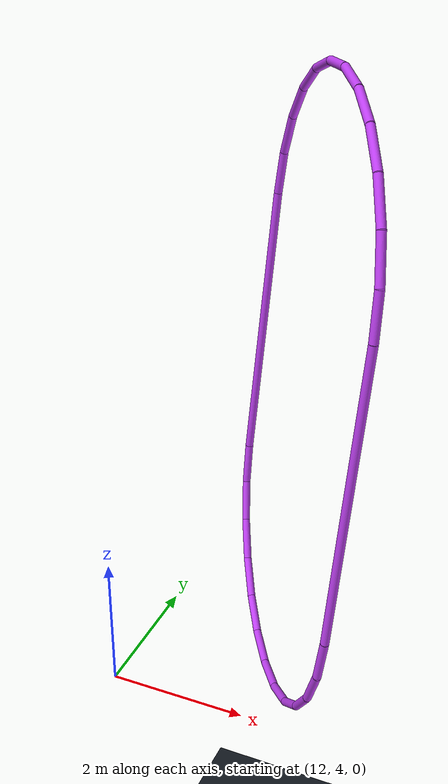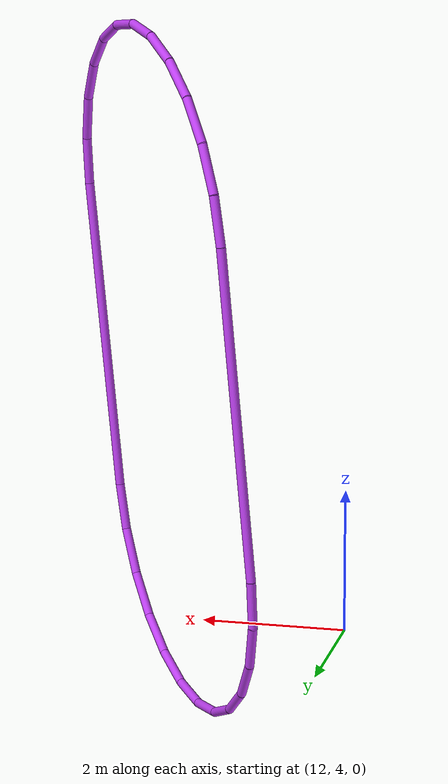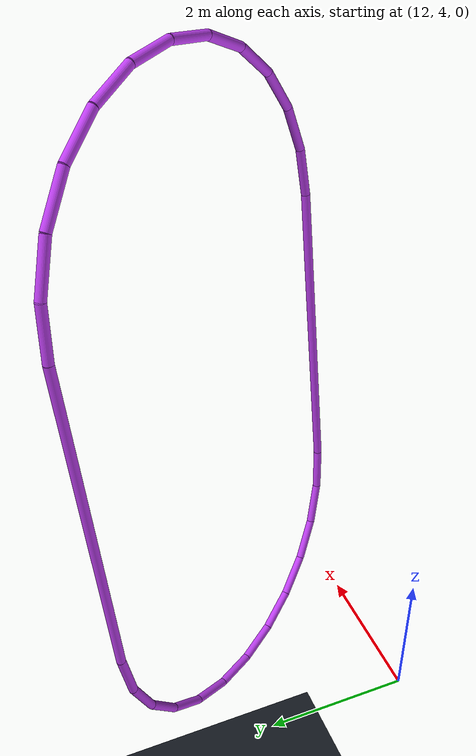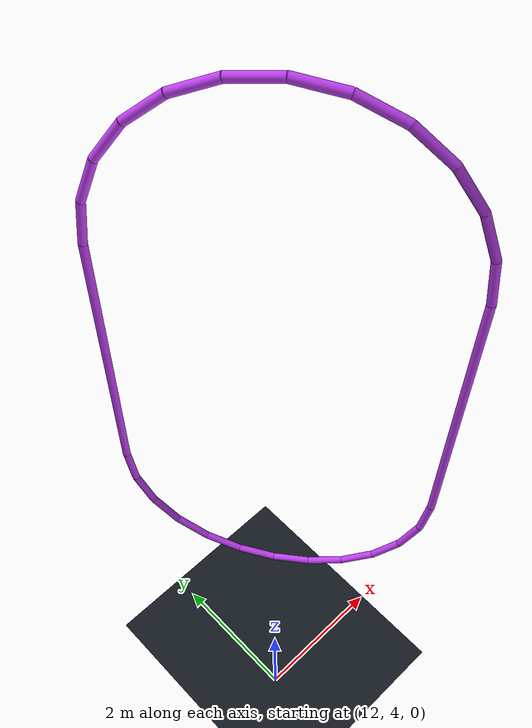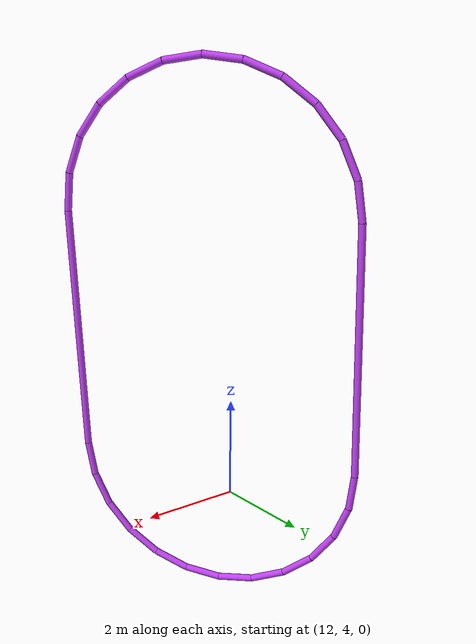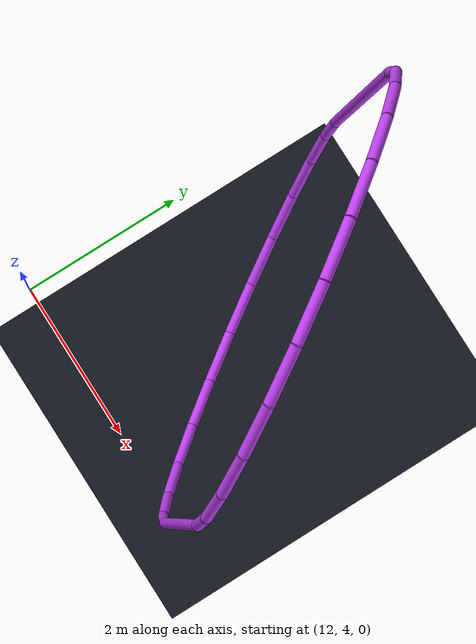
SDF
<sdf version="1.9">
 <world name="wide_scrambled_fast_closed_loop">
  <model name="ground">
   <static>true</static>
   <pose>0 0 -6 0 0 0</pose>
   <link name="link">
    <collision name="c"><geometry><plane><normal>0 0 1</normal><size>80 80</size></plane></geometry></collision>
    <visual name="v">
     <geometry><plane><normal>0 0 1</normal><size>80 80</size></plane></geometry>
     <material><diffuse>0.08 0.10 0.13 1</diffuse></material>
    </visual>
   </link>
  </model>
  <model name="gate_4_arc_capsule">
   <static>true</static>
   <pose>14.000000 6.000000 4.000000 0.000000 1.665382 0.605545</pose>
   <link name="edge_0">
    <pose>0.000000 -2.450000 0 0 1.570796 0.000000</pose>
    <collision name="collision">
     <geometry><cylinder><radius>0.06</radius><length>4.300000</length></cylinder></geometry>
    </collision>
    <visual name="visual">
     <geometry><cylinder><radius>0.06</radius><length>4.300000</length></cylinder></geometry>
     <material><diffuse>0.75 0.25 0.95 1</diffuse><emissive>0.75 0.25 0.95 1</emissive></material>
    </visual>
   </link>
   <link name="edge_1">
    <pose>2.467053 -2.408259 0 0 1.570796 0.130900</pose>
    <collision name="collision">
     <geometry><cylinder><radius>0.06</radius><length>0.639578</length></cylinder></geometry>
    </collision>
    <visual name="visual">
     <geometry><cylinder><radius>0.06</radius><length>0.639578</length></cylinder></geometry>
     <material><diffuse>0.75 0.25 0.95 1</diffuse><emissive>0.75 0.25 0.95 1</emissive></material>
    </visual>
   </link>
   <link name="edge_2">
    <pose>3.079553 -2.244140 0 0 1.570796 0.392699</pose>
    <collision name="collision">
     <geometry><cylinder><radius>0.06</radius><length>0.639578</length></cylinder></geometry>
    </collision>
    <visual name="visual">
     <geometry><cylinder><radius>0.06</radius><length>0.639578</length></cylinder></geometry>
     <material><diffuse>0.75 0.25 0.95 1</diffuse><emissive>0.75 0.25 0.95 1</emissive></material>
    </visual>
   </link>
   <link name="edge_3">
    <pose>3.628706 -1.927087 0 0 1.570796 0.654498</pose>
    <collision name="collision">
     <geometry><cylinder><radius>0.06</radius><length>0.639578</length></cylinder></geometry>
    </collision>
    <visual name="visual">
     <geometry><cylinder><radius>0.06</radius><length>0.639578</length></cylinder></geometry>
     <material><diffuse>0.75 0.25 0.95 1</diffuse><emissive>0.75 0.25 0.95 1</emissive></material>
    </visual>
   </link>
   <link name="edge_4">
    <pose>4.077087 -1.478706 0 0 1.570796 0.916298</pose>
    <collision name="collision">
     <geometry><cylinder><radius>0.06</radius><length>0.639578</length></cylinder></geometry>
    </collision>
    <visual name="visual">
     <geometry><cylinder><radius>0.06</radius><length>0.639578</length></cylinder></geometry>
     <material><diffuse>0.75 0.25 0.95 1</diffuse><emissive>0.75 0.25 0.95 1</emissive></material>
    </visual>
   </link>
   <link name="edge_5">
    <pose>4.394140 -0.929553 0 0 1.570796 1.178097</pose>
    <collision name="collision">
     <geometry><cylinder><radius>0.06</radius><length>0.639578</length></cylinder></geometry>
    </collision>
    <visual name="visual">
     <geometry><cylinder><radius>0.06</radius><length>0.639578</length></cylinder></geometry>
     <material><diffuse>0.75 0.25 0.95 1</diffuse><emissive>0.75 0.25 0.95 1</emissive></material>
    </visual>
   </link>
   <link name="edge_6">
    <pose>4.558259 -0.317053 0 0 1.570796 1.439897</pose>
    <collision name="collision">
     <geometry><cylinder><radius>0.06</radius><length>0.639578</length></cylinder></geometry>
    </collision>
    <visual name="visual">
     <geometry><cylinder><radius>0.06</radius><length>0.639578</length></cylinder></geometry>
     <material><diffuse>0.75 0.25 0.95 1</diffuse><emissive>0.75 0.25 0.95 1</emissive></material>
    </visual>
   </link>
   <link name="edge_7">
    <pose>4.558259 0.317053 0 0 1.570796 1.701696</pose>
    <collision name="collision">
     <geometry><cylinder><radius>0.06</radius><length>0.639578</length></cylinder></geometry>
    </collision>
    <visual name="visual">
     <geometry><cylinder><radius>0.06</radius><length>0.639578</length></cylinder></geometry>
     <material><diffuse>0.75 0.25 0.95 1</diffuse><emissive>0.75 0.25 0.95 1</emissive></material>
    </visual>
   </link>
   <link name="edge_8">
    <pose>4.394140 0.929553 0 0 1.570796 1.963495</pose>
    <collision name="collision">
     <geometry><cylinder><radius>0.06</radius><length>0.639578</length></cylinder></geometry>
    </collision>
    <visual name="visual">
     <geometry><cylinder><radius>0.06</radius><length>0.639578</length></cylinder></geometry>
     <material><diffuse>0.75 0.25 0.95 1</diffuse><emissive>0.75 0.25 0.95 1</emissive></material>
    </visual>
   </link>
   <link name="edge_9">
    <pose>4.077087 1.478706 0 0 1.570796 2.225295</pose>
    <collision name="collision">
     <geometry><cylinder><radius>0.06</radius><length>0.639578</length></cylinder></geometry>
    </collision>
    <visual name="visual">
     <geometry><cylinder><radius>0.06</radius><length>0.639578</length></cylinder></geometry>
     <material><diffuse>0.75 0.25 0.95 1</diffuse><emissive>0.75 0.25 0.95 1</emissive></material>
    </visual>
   </link>
   <link name="edge_10">
    <pose>3.628706 1.927087 0 0 1.570796 2.487094</pose>
    <collision name="collision">
     <geometry><cylinder><radius>0.06</radius><length>0.639578</length></cylinder></geometry>
    </collision>
    <visual name="visual">
     <geometry><cylinder><radius>0.06</radius><length>0.639578</length></cylinder></geometry>
     <material><diffuse>0.75 0.25 0.95 1</diffuse><emissive>0.75 0.25 0.95 1</emissive></material>
    </visual>
   </link>
   <link name="edge_11">
    <pose>3.079553 2.244140 0 0 1.570796 2.748894</pose>
    <collision name="collision">
     <geometry><cylinder><radius>0.06</radius><length>0.639578</length></cylinder></geometry>
    </collision>
    <visual name="visual">
     <geometry><cylinder><radius>0.06</radius><length>0.639578</length></cylinder></geometry>
     <material><diffuse>0.75 0.25 0.95 1</diffuse><emissive>0.75 0.25 0.95 1</emissive></material>
    </visual>
   </link>
   <link name="edge_12">
    <pose>2.467053 2.408259 0 0 1.570796 3.010693</pose>
    <collision name="collision">
     <geometry><cylinder><radius>0.06</radius><length>0.639578</length></cylinder></geometry>
    </collision>
    <visual name="visual">
     <geometry><cylinder><radius>0.06</radius><length>0.639578</length></cylinder></geometry>
     <material><diffuse>0.75 0.25 0.95 1</diffuse><emissive>0.75 0.25 0.95 1</emissive></material>
    </visual>
   </link>
   <link name="edge_13">
    <pose>0.000000 2.450000 0 0 1.570796 3.141593</pose>
    <collision name="collision">
     <geometry><cylinder><radius>0.06</radius><length>4.300000</length></cylinder></geometry>
    </collision>
    <visual name="visual">
     <geometry><cylinder><radius>0.06</radius><length>4.300000</length></cylinder></geometry>
     <material><diffuse>0.75 0.25 0.95 1</diffuse><emissive>0.75 0.25 0.95 1</emissive></material>
    </visual>
   </link>
   <link name="edge_14">
    <pose>-2.467053 2.408259 0 0 1.570796 -3.010693</pose>
    <collision name="collision">
     <geometry><cylinder><radius>0.06</radius><length>0.639578</length></cylinder></geometry>
    </collision>
    <visual name="visual">
     <geometry><cylinder><radius>0.06</radius><length>0.639578</length></cylinder></geometry>
     <material><diffuse>0.75 0.25 0.95 1</diffuse><emissive>0.75 0.25 0.95 1</emissive></material>
    </visual>
   </link>
   <link name="edge_15">
    <pose>-3.079553 2.244140 0 0 1.570796 -2.748894</pose>
    <collision name="collision">
     <geometry><cylinder><radius>0.06</radius><length>0.639578</length></cylinder></geometry>
    </collision>
    <visual name="visual">
     <geometry><cylinder><radius>0.06</radius><length>0.639578</length></cylinder></geometry>
     <material><diffuse>0.75 0.25 0.95 1</diffuse><emissive>0.75 0.25 0.95 1</emissive></material>
    </visual>
   </link>
   <link name="edge_16">
    <pose>-3.628706 1.927087 0 0 1.570796 -2.487094</pose>
    <collision name="collision">
     <geometry><cylinder><radius>0.06</radius><length>0.639578</length></cylinder></geometry>
    </collision>
    <visual name="visual">
     <geometry><cylinder><radius>0.06</radius><length>0.639578</length></cylinder></geometry>
     <material><diffuse>0.75 0.25 0.95 1</diffuse><emissive>0.75 0.25 0.95 1</emissive></material>
    </visual>
   </link>
   <link name="edge_17">
    <pose>-4.077087 1.478706 0 0 1.570796 -2.225295</pose>
    <collision name="collision">
     <geometry><cylinder><radius>0.06</radius><length>0.639578</length></cylinder></geometry>
    </collision>
    <visual name="visual">
     <geometry><cylinder><radius>0.06</radius><length>0.639578</length></cylinder></geometry>
     <material><diffuse>0.75 0.25 0.95 1</diffuse><emissive>0.75 0.25 0.95 1</emissive></material>
    </visual>
   </link>
   <link name="edge_18">
    <pose>-4.394140 0.929553 0 0 1.570796 -1.963495</pose>
    <collision name="collision">
     <geometry><cylinder><radius>0.06</radius><length>0.639578</length></cylinder></geometry>
    </collision>
    <visual name="visual">
     <geometry><cylinder><radius>0.06</radius><length>0.639578</length></cylinder></geometry>
     <material><diffuse>0.75 0.25 0.95 1</diffuse><emissive>0.75 0.25 0.95 1</emissive></material>
    </visual>
   </link>
   <link name="edge_19">
    <pose>-4.558259 0.317053 0 0 1.570796 -1.701696</pose>
    <collision name="collision">
     <geometry><cylinder><radius>0.06</radius><length>0.639578</length></cylinder></geometry>
    </collision>
    <visual name="visual">
     <geometry><cylinder><radius>0.06</radius><length>0.639578</length></cylinder></geometry>
     <material><diffuse>0.75 0.25 0.95 1</diffuse><emissive>0.75 0.25 0.95 1</emissive></material>
    </visual>
   </link>
   <link name="edge_20">
    <pose>-4.558259 -0.317053 0 0 1.570796 -1.439897</pose>
    <collision name="collision">
     <geometry><cylinder><radius>0.06</radius><length>0.639578</length></cylinder></geometry>
    </collision>
    <visual name="visual">
     <geometry><cylinder><radius>0.06</radius><length>0.639578</length></cylinder></geometry>
     <material><diffuse>0.75 0.25 0.95 1</diffuse><emissive>0.75 0.25 0.95 1</emissive></material>
    </visual>
   </link>
   <link name="edge_21">
    <pose>-4.394140 -0.929553 0 0 1.570796 -1.178097</pose>
    <collision name="collision">
     <geometry><cylinder><radius>0.06</radius><length>0.639578</length></cylinder></geometry>
    </collision>
    <visual name="visual">
     <geometry><cylinder><radius>0.06</radius><length>0.639578</length></cylinder></geometry>
     <material><diffuse>0.75 0.25 0.95 1</diffuse><emissive>0.75 0.25 0.95 1</emissive></material>
    </visual>
   </link>
   <link name="edge_22">
    <pose>-4.077087 -1.478706 0 0 1.570796 -0.916298</pose>
    <collision name="collision">
     <geometry><cylinder><radius>0.06</radius><length>0.639578</length></cylinder></geometry>
    </collision>
    <visual name="visual">
     <geometry><cylinder><radius>0.06</radius><length>0.639578</length></cylinder></geometry>
     <material><diffuse>0.75 0.25 0.95 1</diffuse><emissive>0.75 0.25 0.95 1</emissive></material>
    </visual>
   </link>
   <link name="edge_23">
    <pose>-3.628706 -1.927087 0 0 1.570796 -0.654498</pose>
    <collision name="collision">
     <geometry><cylinder><radius>0.06</radius><length>0.639578</length></cylinder></geometry>
    </collision>
    <visual name="visual">
     <geometry><cylinder><radius>0.06</radius><length>0.639578</length></cylinder></geometry>
     <material><diffuse>0.75 0.25 0.95 1</diffuse><emissive>0.75 0.25 0.95 1</emissive></material>
    </visual>
   </link>
   <link name="edge_24">
    <pose>-3.079553 -2.244140 0 0 1.570796 -0.392699</pose>
    <collision name="collision">
     <geometry><cylinder><radius>0.06</radius><length>0.639578</length></cylinder></geometry>
    </collision>
    <visual name="visual">
     <geometry><cylinder><radius>0.06</radius><length>0.639578</length></cylinder></geometry>
     <material><diffuse>0.75 0.25 0.95 1</diffuse><emissive>0.75 0.25 0.95 1</emissive></material>
    </visual>
   </link>
   <link name="edge_25">
    <pose>-2.467053 -2.408259 0 0 1.570796 -0.130900</pose>
    <collision name="collision">
     <geometry><cylinder><radius>0.06</radius><length>0.639578</length></cylinder></geometry>
    </collision>
    <visual name="visual">
     <geometry><cylinder><radius>0.06</radius><length>0.639578</length></cylinder></geometry>
     <material><diffuse>0.75 0.25 0.95 1</diffuse><emissive>0.75 0.25 0.95 1</emissive></material>
    </visual>
   </link>
  </model>
 </world>
</sdf>
